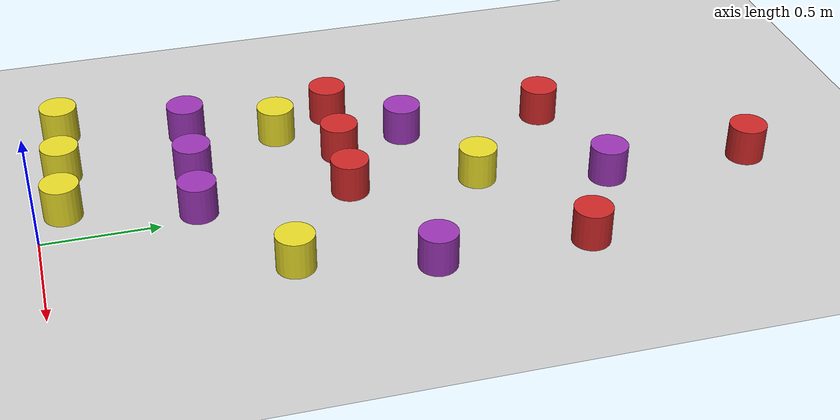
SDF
<sdf version="1.7">
 <world name="default">
  <model name="ground_plane">
   <static>1</static>
   <link name="link">
    <collision name="collision">
     <geometry><plane><normal>0 0 1</normal><size>100 100</size></plane></geometry>
     <surface>
      <contact><collide_bitmask>65535</collide_bitmask></contact>
      <friction><ode><mu>100</mu><mu2>50</mu2></ode></friction>
     </surface>
    </collision>
    <visual name="visual">
     <cast_shadows>0</cast_shadows>
     <geometry><plane><normal>0 0 1</normal><size>100 100</size></plane></geometry>
     <material>
      <script><uri>file://media/materials/scripts/gazebo.material</uri><name>Gazebo/Grey</name></script>
     </material>
    </visual>
   </link>
  </model>
  <model name="3obstacles">
   <static>1</static>
   <link name="obstacle_1">
    <inertial>
     <mass>1</mass>
     <inertia>
      <ixx>1.73831e-05</ixx>
      <ixy>0</ixy>
      <ixz>0</ixz>
      <iyy>1.73831e-05</iyy>
      <iyz>0</iyz>
      <izz>1.4913e-05</izz>
     </inertia>
    </inertial>
    <pose>-0.44 1 0 0 -0 0</pose>
    <visual name="visual">
     <geometry><cylinder><radius>0.0820934</radius><length>0.16406</length></cylinder></geometry>
     <material>
      <lighting>1</lighting>
      <script><uri>file://media/materials/scripts/gazebo.material</uri><name>Gazebo/Red</name></script>
      <shader type="pixel"><normal_map>__default__</normal_map></shader>
      <ambient>1 0 0 1</ambient>
      <diffuse>1 0 0 1</diffuse>
      <specular>0.1 0.1 0.1 1</specular>
      <emissive>0 0 0 1</emissive>
     </material>
    </visual>
    <collision name="collision">
     <geometry><cylinder><radius>0.082093</radius><length>0.16406</length></cylinder></geometry>
     <surface>
      <friction>
       <ode><mu>1</mu><mu2>1</mu2><fdir1>0 0 0</fdir1><slip1>0</slip1><slip2>0</slip2></ode>
       <torsional>
        <coefficient>1</coefficient>
        <patch_radius>0</patch_radius>
        <surface_radius>0</surface_radius>
        <use_patch_radius>1</use_patch_radius>
        <ode><slip>0</slip></ode>
       </torsional>
      </friction>
      <bounce><restitution_coefficient>0</restitution_coefficient><threshold>1e+06</threshold></bounce>
      <contact>
       <collide_without_contact>0</collide_without_contact>
       <collide_without_contact_bitmask>1</collide_without_contact_bitmask>
       <collide_bitmask>1</collide_bitmask>
       <ode>
        <soft_cfm>0</soft_cfm>
        <soft_erp>0.2</soft_erp>
        <kp>1e+13</kp>
        <kd>1</kd>
        <max_vel>0.01</max_vel>
        <min_depth>0</min_depth>
       </ode>
       <bullet>
        <split_impulse>1</split_impulse>
        <split_impulse_penetration_threshold>-0.01</split_impulse_penetration_threshold>
        <soft_cfm>0</soft_cfm>
        <soft_erp>0.2</soft_erp>
        <kp>1e+13</kp>
        <kd>1</kd>
       </bullet>
      </contact>
     </surface>
    </collision>
   </link>
   <link name="obstacle_2">
    <inertial>
     <mass>0.00442567</mass>
     <inertia>
      <ixx>1.73831e-05</ixx>
      <ixy>0</ixy>
      <ixz>0</ixz>
      <iyy>1.73831e-05</iyy>
      <iyz>0</iyz>
      <izz>1.4913e-05</izz>
     </inertia>
    </inertial>
    <pose>-0.4398 0.35 0 0 -0 0</pose>
    <visual name="visual">
     <geometry><cylinder><radius>0.0820934</radius><length>0.16406</length></cylinder></geometry>
     <material>
      <lighting>1</lighting>
      <script><uri>file://media/materials/scripts/gazebo.material</uri><name>Gazebo/Purple</name></script>
      <shader type="pixel"><normal_map>__default__</normal_map></shader>
      <ambient>1 0 0 1</ambient>
      <diffuse>1 0 0 1</diffuse>
      <specular>0.1 0.1 0.1 1</specular>
      <emissive>0 0 0 1</emissive>
     </material>
    </visual>
    <collision name="collision">
     <geometry><cylinder><radius>0.082093</radius><length>0.16406</length></cylinder></geometry>
     <surface>
      <friction>
       <ode><mu>1</mu><mu2>1</mu2><fdir1>0 0 0</fdir1><slip1>0</slip1><slip2>0</slip2></ode>
       <torsional>
        <coefficient>1</coefficient>
        <patch_radius>0</patch_radius>
        <surface_radius>0</surface_radius>
        <use_patch_radius>1</use_patch_radius>
        <ode><slip>0</slip></ode>
       </torsional>
      </friction>
      <bounce><restitution_coefficient>0</restitution_coefficient><threshold>1e+06</threshold></bounce>
      <contact>
       <collide_without_contact>0</collide_without_contact>
       <collide_without_contact_bitmask>1</collide_without_contact_bitmask>
       <collide_bitmask>1</collide_bitmask>
       <ode>
        <soft_cfm>0</soft_cfm>
        <soft_erp>0.2</soft_erp>
        <kp>1e+13</kp>
        <kd>1</kd>
        <max_vel>0.01</max_vel>
        <min_depth>0</min_depth>
       </ode>
       <bullet>
        <split_impulse>1</split_impulse>
        <split_impulse_penetration_threshold>-0.01</split_impulse_penetration_threshold>
        <soft_cfm>0</soft_cfm>
        <soft_erp>0.2</soft_erp>
        <kp>1e+13</kp>
        <kd>1</kd>
       </bullet>
      </contact>
     </surface>
    </collision>
   </link>
   <link name="obstacle_3">
    <inertial>
     <mass>0.00442567</mass>
     <inertia>
      <ixx>1.73831e-05</ixx>
      <ixy>0</ixy>
      <ixz>0</ixz>
      <iyy>1.73831e-05</iyy>
      <iyz>0</iyz>
      <izz>1.4913e-05</izz>
     </inertia>
    </inertial>
    <pose>-0.57 -0.2 0 0 -0 0</pose>
    <visual name="visual">
     <geometry><cylinder><radius>0.0820934</radius><length>0.16406</length></cylinder></geometry>
     <material>
      <lighting>1</lighting>
      <script><uri>file://media/materials/scripts/gazebo.material</uri><name>Gazebo/Yellow</name></script>
      <shader type="pixel"><normal_map>__default__</normal_map></shader>
      <ambient>1 0 0 1</ambient>
      <diffuse>1 0 0 1</diffuse>
      <specular>0.1 0.1 0.1 1</specular>
      <emissive>0 0 0 1</emissive>
     </material>
    </visual>
    <collision name="collision">
     <geometry><cylinder><radius>0.082093</radius><length>0.16406</length></cylinder></geometry>
     <surface>
      <friction>
       <ode><mu>1</mu><mu2>1</mu2><fdir1>0 0 0</fdir1><slip1>0</slip1><slip2>0</slip2></ode>
       <torsional>
        <coefficient>1</coefficient>
        <patch_radius>0</patch_radius>
        <surface_radius>0</surface_radius>
        <use_patch_radius>1</use_patch_radius>
        <ode><slip>0</slip></ode>
       </torsional>
      </friction>
      <bounce><restitution_coefficient>0</restitution_coefficient><threshold>1e+06</threshold></bounce>
      <contact>
       <collide_without_contact>0</collide_without_contact>
       <collide_without_contact_bitmask>1</collide_without_contact_bitmask>
       <collide_bitmask>1</collide_bitmask>
       <ode>
        <soft_cfm>0</soft_cfm>
        <soft_erp>0.2</soft_erp>
        <kp>1e+13</kp>
        <kd>1</kd>
        <max_vel>0.01</max_vel>
        <min_depth>0</min_depth>
       </ode>
       <bullet>
        <split_impulse>1</split_impulse>
        <split_impulse_penetration_threshold>-0.01</split_impulse_penetration_threshold>
        <soft_cfm>0</soft_cfm>
        <soft_erp>0.2</soft_erp>
        <kp>1e+13</kp>
        <kd>1</kd>
       </bullet>
      </contact>
     </surface>
    </collision>
   </link>
   <static>1</static>
   <pose>0.379904 0.313177 0.077132 0 -0 0</pose>
  </model>
  <model name="3obstacles_clone">
   <static>1</static>
   <link name="obstacle_1">
    <inertial>
     <mass>1</mass>
     <inertia>
      <ixx>1.73831e-05</ixx>
      <ixy>0</ixy>
      <ixz>0</ixz>
      <iyy>1.73831e-05</iyy>
      <iyz>0</iyz>
      <izz>1.4913e-05</izz>
     </inertia>
    </inertial>
    <pose>-0.44 1 0 0 -0 0</pose>
    <visual name="visual">
     <geometry><cylinder><radius>0.0820934</radius><length>0.16406</length></cylinder></geometry>
     <material>
      <lighting>1</lighting>
      <script><uri>file://media/materials/scripts/gazebo.material</uri><name>Gazebo/Red</name></script>
      <shader type="pixel"><normal_map>__default__</normal_map></shader>
      <ambient>1 0 0 1</ambient>
      <diffuse>1 0 0 1</diffuse>
      <specular>0.1 0.1 0.1 1</specular>
      <emissive>0 0 0 1</emissive>
     </material>
    </visual>
    <collision name="collision">
     <geometry><cylinder><radius>0.082093</radius><length>0.16406</length></cylinder></geometry>
     <surface>
      <friction>
       <ode><mu>1</mu><mu2>1</mu2><fdir1>0 0 0</fdir1><slip1>0</slip1><slip2>0</slip2></ode>
       <torsional>
        <coefficient>1</coefficient>
        <patch_radius>0</patch_radius>
        <surface_radius>0</surface_radius>
        <use_patch_radius>1</use_patch_radius>
        <ode><slip>0</slip></ode>
       </torsional>
      </friction>
      <bounce><restitution_coefficient>0</restitution_coefficient><threshold>1e+06</threshold></bounce>
      <contact>
       <collide_without_contact>0</collide_without_contact>
       <collide_without_contact_bitmask>1</collide_without_contact_bitmask>
       <collide_bitmask>1</collide_bitmask>
       <ode>
        <soft_cfm>0</soft_cfm>
        <soft_erp>0.2</soft_erp>
        <kp>1e+13</kp>
        <kd>1</kd>
        <max_vel>0.01</max_vel>
        <min_depth>0</min_depth>
       </ode>
       <bullet>
        <split_impulse>1</split_impulse>
        <split_impulse_penetration_threshold>-0.01</split_impulse_penetration_threshold>
        <soft_cfm>0</soft_cfm>
        <soft_erp>0.2</soft_erp>
        <kp>1e+13</kp>
        <kd>1</kd>
       </bullet>
      </contact>
     </surface>
    </collision>
   </link>
   <link name="obstacle_2">
    <inertial>
     <mass>0.00442567</mass>
     <inertia>
      <ixx>1.73831e-05</ixx>
      <ixy>0</ixy>
      <ixz>0</ixz>
      <iyy>1.73831e-05</iyy>
      <iyz>0</iyz>
      <izz>1.4913e-05</izz>
     </inertia>
    </inertial>
    <pose>-0.4398 0.35 0 0 -0 0</pose>
    <visual name="visual">
     <geometry><cylinder><radius>0.0820934</radius><length>0.16406</length></cylinder></geometry>
     <material>
      <lighting>1</lighting>
      <script><uri>file://media/materials/scripts/gazebo.material</uri><name>Gazebo/Purple</name></script>
      <shader type="pixel"><normal_map>__default__</normal_map></shader>
      <ambient>1 0 0 1</ambient>
      <diffuse>1 0 0 1</diffuse>
      <specular>0.1 0.1 0.1 1</specular>
      <emissive>0 0 0 1</emissive>
     </material>
    </visual>
    <collision name="collision">
     <geometry><cylinder><radius>0.082093</radius><length>0.16406</length></cylinder></geometry>
     <surface>
      <friction>
       <ode><mu>1</mu><mu2>1</mu2><fdir1>0 0 0</fdir1><slip1>0</slip1><slip2>0</slip2></ode>
       <torsional>
        <coefficient>1</coefficient>
        <patch_radius>0</patch_radius>
        <surface_radius>0</surface_radius>
        <use_patch_radius>1</use_patch_radius>
        <ode><slip>0</slip></ode>
       </torsional>
      </friction>
      <bounce><restitution_coefficient>0</restitution_coefficient><threshold>1e+06</threshold></bounce>
      <contact>
       <collide_without_contact>0</collide_without_contact>
       <collide_without_contact_bitmask>1</collide_without_contact_bitmask>
       <collide_bitmask>1</collide_bitmask>
       <ode>
        <soft_cfm>0</soft_cfm>
        <soft_erp>0.2</soft_erp>
        <kp>1e+13</kp>
        <kd>1</kd>
        <max_vel>0.01</max_vel>
        <min_depth>0</min_depth>
       </ode>
       <bullet>
        <split_impulse>1</split_impulse>
        <split_impulse_penetration_threshold>-0.01</split_impulse_penetration_threshold>
        <soft_cfm>0</soft_cfm>
        <soft_erp>0.2</soft_erp>
        <kp>1e+13</kp>
        <kd>1</kd>
       </bullet>
      </contact>
     </surface>
    </collision>
   </link>
   <link name="obstacle_3">
    <inertial>
     <mass>0.00442567</mass>
     <inertia>
      <ixx>1.73831e-05</ixx>
      <ixy>0</ixy>
      <ixz>0</ixz>
      <iyy>1.73831e-05</iyy>
      <iyz>0</iyz>
      <izz>1.4913e-05</izz>
     </inertia>
    </inertial>
    <pose>-0.57 -0.2 0 0 -0 0</pose>
    <visual name="visual">
     <geometry><cylinder><radius>0.0820934</radius><length>0.16406</length></cylinder></geometry>
     <material>
      <lighting>1</lighting>
      <script><uri>file://media/materials/scripts/gazebo.material</uri><name>Gazebo/Yellow</name></script>
      <shader type="pixel"><normal_map>__default__</normal_map></shader>
      <ambient>1 0 0 1</ambient>
      <diffuse>1 0 0 1</diffuse>
      <specular>0.1 0.1 0.1 1</specular>
      <emissive>0 0 0 1</emissive>
     </material>
    </visual>
    <collision name="collision">
     <geometry><cylinder><radius>0.082093</radius><length>0.16406</length></cylinder></geometry>
     <surface>
      <friction>
       <ode><mu>1</mu><mu2>1</mu2><fdir1>0 0 0</fdir1><slip1>0</slip1><slip2>0</slip2></ode>
       <torsional>
        <coefficient>1</coefficient>
        <patch_radius>0</patch_radius>
        <surface_radius>0</surface_radius>
        <use_patch_radius>1</use_patch_radius>
        <ode><slip>0</slip></ode>
       </torsional>
      </friction>
      <bounce><restitution_coefficient>0</restitution_coefficient><threshold>1e+06</threshold></bounce>
      <contact>
       <collide_without_contact>0</collide_without_contact>
       <collide_without_contact_bitmask>1</collide_without_contact_bitmask>
       <collide_bitmask>1</collide_bitmask>
       <ode>
        <soft_cfm>0</soft_cfm>
        <soft_erp>0.2</soft_erp>
        <kp>1e+13</kp>
        <kd>1</kd>
        <max_vel>0.01</max_vel>
        <min_depth>0</min_depth>
       </ode>
       <bullet>
        <split_impulse>1</split_impulse>
        <split_impulse_penetration_threshold>-0.01</split_impulse_penetration_threshold>
        <soft_cfm>0</soft_cfm>
        <soft_erp>0.2</soft_erp>
        <kp>1e+13</kp>
        <kd>1</kd>
       </bullet>
      </contact>
     </surface>
    </collision>
   </link>
   <static>1</static>
   <pose>0.087386 0.333914 0.077132 0 -0 0</pose>
  </model>
  <model name="3obstacles_clone_0">
   <static>1</static>
   <link name="obstacle_1">
    <inertial>
     <mass>1</mass>
     <inertia>
      <ixx>1.73831e-05</ixx>
      <ixy>0</ixy>
      <ixz>0</ixz>
      <iyy>1.73831e-05</iyy>
      <iyz>0</iyz>
      <izz>1.4913e-05</izz>
     </inertia>
    </inertial>
    <pose>-0.44 1 0 0 -0 0</pose>
    <visual name="visual">
     <geometry><cylinder><radius>0.0820934</radius><length>0.16406</length></cylinder></geometry>
     <material>
      <lighting>1</lighting>
      <script><uri>file://media/materials/scripts/gazebo.material</uri><name>Gazebo/Red</name></script>
      <shader type="pixel"><normal_map>__default__</normal_map></shader>
      <ambient>1 0 0 1</ambient>
      <diffuse>1 0 0 1</diffuse>
      <specular>0.1 0.1 0.1 1</specular>
      <emissive>0 0 0 1</emissive>
     </material>
    </visual>
    <collision name="collision">
     <geometry><cylinder><radius>0.082093</radius><length>0.16406</length></cylinder></geometry>
     <surface>
      <friction>
       <ode><mu>1</mu><mu2>1</mu2><fdir1>0 0 0</fdir1><slip1>0</slip1><slip2>0</slip2></ode>
       <torsional>
        <coefficient>1</coefficient>
        <patch_radius>0</patch_radius>
        <surface_radius>0</surface_radius>
        <use_patch_radius>1</use_patch_radius>
        <ode><slip>0</slip></ode>
       </torsional>
      </friction>
      <bounce><restitution_coefficient>0</restitution_coefficient><threshold>1e+06</threshold></bounce>
      <contact>
       <collide_without_contact>0</collide_without_contact>
       <collide_without_contact_bitmask>1</collide_without_contact_bitmask>
       <collide_bitmask>1</collide_bitmask>
       <ode>
        <soft_cfm>0</soft_cfm>
        <soft_erp>0.2</soft_erp>
        <kp>1e+13</kp>
        <kd>1</kd>
        <max_vel>0.01</max_vel>
        <min_depth>0</min_depth>
       </ode>
       <bullet>
        <split_impulse>1</split_impulse>
        <split_impulse_penetration_threshold>-0.01</split_impulse_penetration_threshold>
        <soft_cfm>0</soft_cfm>
        <soft_erp>0.2</soft_erp>
        <kp>1e+13</kp>
        <kd>1</kd>
       </bullet>
      </contact>
     </surface>
    </collision>
   </link>
   <link name="obstacle_2">
    <inertial>
     <mass>0.00442567</mass>
     <inertia>
      <ixx>1.73831e-05</ixx>
      <ixy>0</ixy>
      <ixz>0</ixz>
      <iyy>1.73831e-05</iyy>
      <iyz>0</iyz>
      <izz>1.4913e-05</izz>
     </inertia>
    </inertial>
    <pose>-0.4398 0.35 0 0 -0 0</pose>
    <visual name="visual">
     <geometry><cylinder><radius>0.0820934</radius><length>0.16406</length></cylinder></geometry>
     <material>
      <lighting>1</lighting>
      <script><uri>file://media/materials/scripts/gazebo.material</uri><name>Gazebo/Purple</name></script>
      <shader type="pixel"><normal_map>__default__</normal_map></shader>
      <ambient>1 0 0 1</ambient>
      <diffuse>1 0 0 1</diffuse>
      <specular>0.1 0.1 0.1 1</specular>
      <emissive>0 0 0 1</emissive>
     </material>
    </visual>
    <collision name="collision">
     <geometry><cylinder><radius>0.082093</radius><length>0.16406</length></cylinder></geometry>
     <surface>
      <friction>
       <ode><mu>1</mu><mu2>1</mu2><fdir1>0 0 0</fdir1><slip1>0</slip1><slip2>0</slip2></ode>
       <torsional>
        <coefficient>1</coefficient>
        <patch_radius>0</patch_radius>
        <surface_radius>0</surface_radius>
        <use_patch_radius>1</use_patch_radius>
        <ode><slip>0</slip></ode>
       </torsional>
      </friction>
      <bounce><restitution_coefficient>0</restitution_coefficient><threshold>1e+06</threshold></bounce>
      <contact>
       <collide_without_contact>0</collide_without_contact>
       <collide_without_contact_bitmask>1</collide_without_contact_bitmask>
       <collide_bitmask>1</collide_bitmask>
       <ode>
        <soft_cfm>0</soft_cfm>
        <soft_erp>0.2</soft_erp>
        <kp>1e+13</kp>
        <kd>1</kd>
        <max_vel>0.01</max_vel>
        <min_depth>0</min_depth>
       </ode>
       <bullet>
        <split_impulse>1</split_impulse>
        <split_impulse_penetration_threshold>-0.01</split_impulse_penetration_threshold>
        <soft_cfm>0</soft_cfm>
        <soft_erp>0.2</soft_erp>
        <kp>1e+13</kp>
        <kd>1</kd>
       </bullet>
      </contact>
     </surface>
    </collision>
   </link>
   <link name="obstacle_3">
    <inertial>
     <mass>0.00442567</mass>
     <inertia>
      <ixx>1.73831e-05</ixx>
      <ixy>0</ixy>
      <ixz>0</ixz>
      <iyy>1.73831e-05</iyy>
      <iyz>0</iyz>
      <izz>1.4913e-05</izz>
     </inertia>
    </inertial>
    <pose>-0.57 -0.2 0 0 -0 0</pose>
    <visual name="visual">
     <geometry><cylinder><radius>0.0820934</radius><length>0.16406</length></cylinder></geometry>
     <material>
      <lighting>1</lighting>
      <script><uri>file://media/materials/scripts/gazebo.material</uri><name>Gazebo/Yellow</name></script>
      <shader type="pixel"><normal_map>__default__</normal_map></shader>
      <ambient>1 0 0 1</ambient>
      <diffuse>1 0 0 1</diffuse>
      <specular>0.1 0.1 0.1 1</specular>
      <emissive>0 0 0 1</emissive>
     </material>
    </visual>
    <collision name="collision">
     <geometry><cylinder><radius>0.082093</radius><length>0.16406</length></cylinder></geometry>
     <surface>
      <friction>
       <ode><mu>1</mu><mu2>1</mu2><fdir1>0 0 0</fdir1><slip1>0</slip1><slip2>0</slip2></ode>
       <torsional>
        <coefficient>1</coefficient>
        <patch_radius>0</patch_radius>
        <surface_radius>0</surface_radius>
        <use_patch_radius>1</use_patch_radius>
        <ode><slip>0</slip></ode>
       </torsional>
      </friction>
      <bounce><restitution_coefficient>0</restitution_coefficient><threshold>1e+06</threshold></bounce>
      <contact>
       <collide_without_contact>0</collide_without_contact>
       <collide_without_contact_bitmask>1</collide_without_contact_bitmask>
       <collide_bitmask>1</collide_bitmask>
       <ode>
        <soft_cfm>0</soft_cfm>
        <soft_erp>0.2</soft_erp>
        <kp>1e+13</kp>
        <kd>1</kd>
        <max_vel>0.01</max_vel>
        <min_depth>0</min_depth>
       </ode>
       <bullet>
        <split_impulse>1</split_impulse>
        <split_impulse_penetration_threshold>-0.01</split_impulse_penetration_threshold>
        <soft_cfm>0</soft_cfm>
        <soft_erp>0.2</soft_erp>
        <kp>1e+13</kp>
        <kd>1</kd>
       </bullet>
      </contact>
     </surface>
    </collision>
   </link>
   <static>1</static>
   <pose>-0.24166 0.352496 0.077132 0 -0 0</pose>
  </model>
  <model name="3obstacles_clone_3">
   <static>1</static>
   <link name="obstacle_1">
    <inertial>
     <mass>1</mass>
     <inertia>
      <ixx>1.73831e-05</ixx>
      <ixy>0</ixy>
      <ixz>0</ixz>
      <iyy>1.73831e-05</iyy>
      <iyz>0</iyz>
      <izz>1.4913e-05</izz>
     </inertia>
    </inertial>
    <pose>-0.44 1 0 0 -0 0</pose>
    <visual name="visual">
     <geometry><cylinder><radius>0.0820934</radius><length>0.16406</length></cylinder></geometry>
     <material>
      <lighting>1</lighting>
      <script><uri>file://media/materials/scripts/gazebo.material</uri><name>Gazebo/Red</name></script>
      <shader type="pixel"><normal_map>__default__</normal_map></shader>
      <ambient>1 0 0 1</ambient>
      <diffuse>1 0 0 1</diffuse>
      <specular>0.1 0.1 0.1 1</specular>
      <emissive>0 0 0 1</emissive>
     </material>
    </visual>
    <collision name="collision">
     <geometry><cylinder><radius>0.082093</radius><length>0.16406</length></cylinder></geometry>
     <surface>
      <friction>
       <ode><mu>1</mu><mu2>1</mu2><fdir1>0 0 0</fdir1><slip1>0</slip1><slip2>0</slip2></ode>
       <torsional>
        <coefficient>1</coefficient>
        <patch_radius>0</patch_radius>
        <surface_radius>0</surface_radius>
        <use_patch_radius>1</use_patch_radius>
        <ode><slip>0</slip></ode>
       </torsional>
      </friction>
      <bounce><restitution_coefficient>0</restitution_coefficient><threshold>1e+06</threshold></bounce>
      <contact>
       <collide_without_contact>0</collide_without_contact>
       <collide_without_contact_bitmask>1</collide_without_contact_bitmask>
       <collide_bitmask>1</collide_bitmask>
       <ode>
        <soft_cfm>0</soft_cfm>
        <soft_erp>0.2</soft_erp>
        <kp>1e+13</kp>
        <kd>1</kd>
        <max_vel>0.01</max_vel>
        <min_depth>0</min_depth>
       </ode>
       <bullet>
        <split_impulse>1</split_impulse>
        <split_impulse_penetration_threshold>-0.01</split_impulse_penetration_threshold>
        <soft_cfm>0</soft_cfm>
        <soft_erp>0.2</soft_erp>
        <kp>1e+13</kp>
        <kd>1</kd>
       </bullet>
      </contact>
     </surface>
    </collision>
   </link>
   <link name="obstacle_2">
    <inertial>
     <mass>0.00442567</mass>
     <inertia>
      <ixx>1.73831e-05</ixx>
      <ixy>0</ixy>
      <ixz>0</ixz>
      <iyy>1.73831e-05</iyy>
      <iyz>0</iyz>
      <izz>1.4913e-05</izz>
     </inertia>
    </inertial>
    <pose>-0.4398 0.35 0 0 -0 0</pose>
    <visual name="visual">
     <geometry><cylinder><radius>0.0820934</radius><length>0.16406</length></cylinder></geometry>
     <material>
      <lighting>1</lighting>
      <script><uri>file://media/materials/scripts/gazebo.material</uri><name>Gazebo/Purple</name></script>
      <shader type="pixel"><normal_map>__default__</normal_map></shader>
      <ambient>1 0 0 1</ambient>
      <diffuse>1 0 0 1</diffuse>
      <specular>0.1 0.1 0.1 1</specular>
      <emissive>0 0 0 1</emissive>
     </material>
    </visual>
    <collision name="collision">
     <geometry><cylinder><radius>0.082093</radius><length>0.16406</length></cylinder></geometry>
     <surface>
      <friction>
       <ode><mu>1</mu><mu2>1</mu2><fdir1>0 0 0</fdir1><slip1>0</slip1><slip2>0</slip2></ode>
       <torsional>
        <coefficient>1</coefficient>
        <patch_radius>0</patch_radius>
        <surface_radius>0</surface_radius>
        <use_patch_radius>1</use_patch_radius>
        <ode><slip>0</slip></ode>
       </torsional>
      </friction>
      <bounce><restitution_coefficient>0</restitution_coefficient><threshold>1e+06</threshold></bounce>
      <contact>
       <collide_without_contact>0</collide_without_contact>
       <collide_without_contact_bitmask>1</collide_without_contact_bitmask>
       <collide_bitmask>1</collide_bitmask>
       <ode>
        <soft_cfm>0</soft_cfm>
        <soft_erp>0.2</soft_erp>
        <kp>1e+13</kp>
        <kd>1</kd>
        <max_vel>0.01</max_vel>
        <min_depth>0</min_depth>
       </ode>
       <bullet>
        <split_impulse>1</split_impulse>
        <split_impulse_penetration_threshold>-0.01</split_impulse_penetration_threshold>
        <soft_cfm>0</soft_cfm>
        <soft_erp>0.2</soft_erp>
        <kp>1e+13</kp>
        <kd>1</kd>
       </bullet>
      </contact>
     </surface>
    </collision>
   </link>
   <link name="obstacle_3">
    <inertial>
     <mass>0.00442567</mass>
     <inertia>
      <ixx>1.73831e-05</ixx>
      <ixy>0</ixy>
      <ixz>0</ixz>
      <iyy>1.73831e-05</iyy>
      <iyz>0</iyz>
      <izz>1.4913e-05</izz>
     </inertia>
    </inertial>
    <pose>-0.57 -0.2 0 0 -0 0</pose>
    <visual name="visual">
     <geometry><cylinder><radius>0.0820934</radius><length>0.16406</length></cylinder></geometry>
     <material>
      <lighting>1</lighting>
      <script><uri>file://media/materials/scripts/gazebo.material</uri><name>Gazebo/Yellow</name></script>
      <shader type="pixel"><normal_map>__default__</normal_map></shader>
      <ambient>1 0 0 1</ambient>
      <diffuse>1 0 0 1</diffuse>
      <specular>0.1 0.1 0.1 1</specular>
      <emissive>0 0 0 1</emissive>
     </material>
    </visual>
    <collision name="collision">
     <geometry><cylinder><radius>0.082093</radius><length>0.16406</length></cylinder></geometry>
     <surface>
      <friction>
       <ode><mu>1</mu><mu2>1</mu2><fdir1>0 0 0</fdir1><slip1>0</slip1><slip2>0</slip2></ode>
       <torsional>
        <coefficient>1</coefficient>
        <patch_radius>0</patch_radius>
        <surface_radius>0</surface_radius>
        <use_patch_radius>1</use_patch_radius>
        <ode><slip>0</slip></ode>
       </torsional>
      </friction>
      <bounce><restitution_coefficient>0</restitution_coefficient><threshold>1e+06</threshold></bounce>
      <contact>
       <collide_without_contact>0</collide_without_contact>
       <collide_without_contact_bitmask>1</collide_without_contact_bitmask>
       <collide_bitmask>1</collide_bitmask>
       <ode>
        <soft_cfm>0</soft_cfm>
        <soft_erp>0.2</soft_erp>
        <kp>1e+13</kp>
        <kd>1</kd>
        <max_vel>0.01</max_vel>
        <min_depth>0</min_depth>
       </ode>
       <bullet>
        <split_impulse>1</split_impulse>
        <split_impulse_penetration_threshold>-0.01</split_impulse_penetration_threshold>
        <soft_cfm>0</soft_cfm>
        <soft_erp>0.2</soft_erp>
        <kp>1e+13</kp>
        <kd>1</kd>
       </bullet>
      </contact>
     </surface>
    </collision>
   </link>
   <static>1</static>
   <pose>0.004479 1.29119 0.077132 0 -0 0</pose>
  </model>
  <model name="3obstacles_clone_4">
   <static>1</static>
   <link name="obstacle_1">
    <inertial>
     <mass>1</mass>
     <inertia>
      <ixx>1.73831e-05</ixx>
      <ixy>0</ixy>
      <ixz>0</ixz>
      <iyy>1.73831e-05</iyy>
      <iyz>0</iyz>
      <izz>1.4913e-05</izz>
     </inertia>
    </inertial>
    <pose>-0.44 1 0 0 -0 0</pose>
    <visual name="visual">
     <geometry><cylinder><radius>0.0820934</radius><length>0.16406</length></cylinder></geometry>
     <material>
      <lighting>1</lighting>
      <script><uri>file://media/materials/scripts/gazebo.material</uri><name>Gazebo/Red</name></script>
      <shader type="pixel"><normal_map>__default__</normal_map></shader>
      <ambient>1 0 0 1</ambient>
      <diffuse>1 0 0 1</diffuse>
      <specular>0.1 0.1 0.1 1</specular>
      <emissive>0 0 0 1</emissive>
     </material>
    </visual>
    <collision name="collision">
     <geometry><cylinder><radius>0.082093</radius><length>0.16406</length></cylinder></geometry>
     <surface>
      <friction>
       <ode><mu>1</mu><mu2>1</mu2><fdir1>0 0 0</fdir1><slip1>0</slip1><slip2>0</slip2></ode>
       <torsional>
        <coefficient>1</coefficient>
        <patch_radius>0</patch_radius>
        <surface_radius>0</surface_radius>
        <use_patch_radius>1</use_patch_radius>
        <ode><slip>0</slip></ode>
       </torsional>
      </friction>
      <bounce><restitution_coefficient>0</restitution_coefficient><threshold>1e+06</threshold></bounce>
      <contact>
       <collide_without_contact>0</collide_without_contact>
       <collide_without_contact_bitmask>1</collide_without_contact_bitmask>
       <collide_bitmask>1</collide_bitmask>
       <ode>
        <soft_cfm>0</soft_cfm>
        <soft_erp>0.2</soft_erp>
        <kp>1e+13</kp>
        <kd>1</kd>
        <max_vel>0.01</max_vel>
        <min_depth>0</min_depth>
       </ode>
       <bullet>
        <split_impulse>1</split_impulse>
        <split_impulse_penetration_threshold>-0.01</split_impulse_penetration_threshold>
        <soft_cfm>0</soft_cfm>
        <soft_erp>0.2</soft_erp>
        <kp>1e+13</kp>
        <kd>1</kd>
       </bullet>
      </contact>
     </surface>
    </collision>
   </link>
   <link name="obstacle_2">
    <inertial>
     <mass>0.00442567</mass>
     <inertia>
      <ixx>1.73831e-05</ixx>
      <ixy>0</ixy>
      <ixz>0</ixz>
      <iyy>1.73831e-05</iyy>
      <iyz>0</iyz>
      <izz>1.4913e-05</izz>
     </inertia>
    </inertial>
    <pose>-0.4398 0.35 0 0 -0 0</pose>
    <visual name="visual">
     <geometry><cylinder><radius>0.0820934</radius><length>0.16406</length></cylinder></geometry>
     <material>
      <lighting>1</lighting>
      <script><uri>file://media/materials/scripts/gazebo.material</uri><name>Gazebo/Purple</name></script>
      <shader type="pixel"><normal_map>__default__</normal_map></shader>
      <ambient>1 0 0 1</ambient>
      <diffuse>1 0 0 1</diffuse>
      <specular>0.1 0.1 0.1 1</specular>
      <emissive>0 0 0 1</emissive>
     </material>
    </visual>
    <collision name="collision">
     <geometry><cylinder><radius>0.082093</radius><length>0.16406</length></cylinder></geometry>
     <surface>
      <friction>
       <ode><mu>1</mu><mu2>1</mu2><fdir1>0 0 0</fdir1><slip1>0</slip1><slip2>0</slip2></ode>
       <torsional>
        <coefficient>1</coefficient>
        <patch_radius>0</patch_radius>
        <surface_radius>0</surface_radius>
        <use_patch_radius>1</use_patch_radius>
        <ode><slip>0</slip></ode>
       </torsional>
      </friction>
      <bounce><restitution_coefficient>0</restitution_coefficient><threshold>1e+06</threshold></bounce>
      <contact>
       <collide_without_contact>0</collide_without_contact>
       <collide_without_contact_bitmask>1</collide_without_contact_bitmask>
       <collide_bitmask>1</collide_bitmask>
       <ode>
        <soft_cfm>0</soft_cfm>
        <soft_erp>0.2</soft_erp>
        <kp>1e+13</kp>
        <kd>1</kd>
        <max_vel>0.01</max_vel>
        <min_depth>0</min_depth>
       </ode>
       <bullet>
        <split_impulse>1</split_impulse>
        <split_impulse_penetration_threshold>-0.01</split_impulse_penetration_threshold>
        <soft_cfm>0</soft_cfm>
        <soft_erp>0.2</soft_erp>
        <kp>1e+13</kp>
        <kd>1</kd>
       </bullet>
      </contact>
     </surface>
    </collision>
   </link>
   <link name="obstacle_3">
    <inertial>
     <mass>0.00442567</mass>
     <inertia>
      <ixx>1.73831e-05</ixx>
      <ixy>0</ixy>
      <ixz>0</ixz>
      <iyy>1.73831e-05</iyy>
      <iyz>0</iyz>
      <izz>1.4913e-05</izz>
     </inertia>
    </inertial>
    <pose>-0.57 -0.2 0 0 -0 0</pose>
    <visual name="visual">
     <geometry><cylinder><radius>0.0820934</radius><length>0.16406</length></cylinder></geometry>
     <material>
      <lighting>1</lighting>
      <script><uri>file://media/materials/scripts/gazebo.material</uri><name>Gazebo/Yellow</name></script>
      <shader type="pixel"><normal_map>__default__</normal_map></shader>
      <ambient>1 0 0 1</ambient>
      <diffuse>1 0 0 1</diffuse>
      <specular>0.1 0.1 0.1 1</specular>
      <emissive>0 0 0 1</emissive>
     </material>
    </visual>
    <collision name="collision">
     <geometry><cylinder><radius>0.082093</radius><length>0.16406</length></cylinder></geometry>
     <surface>
      <friction>
       <ode><mu>1</mu><mu2>1</mu2><fdir1>0 0 0</fdir1><slip1>0</slip1><slip2>0</slip2></ode>
       <torsional>
        <coefficient>1</coefficient>
        <patch_radius>0</patch_radius>
        <surface_radius>0</surface_radius>
        <use_patch_radius>1</use_patch_radius>
        <ode><slip>0</slip></ode>
       </torsional>
      </friction>
      <bounce><restitution_coefficient>0</restitution_coefficient><threshold>1e+06</threshold></bounce>
      <contact>
       <collide_without_contact>0</collide_without_contact>
       <collide_without_contact_bitmask>1</collide_without_contact_bitmask>
       <collide_bitmask>1</collide_bitmask>
       <ode>
        <soft_cfm>0</soft_cfm>
        <soft_erp>0.2</soft_erp>
        <kp>1e+13</kp>
        <kd>1</kd>
        <max_vel>0.01</max_vel>
        <min_depth>0</min_depth>
       </ode>
       <bullet>
        <split_impulse>1</split_impulse>
        <split_impulse_penetration_threshold>-0.01</split_impulse_penetration_threshold>
        <soft_cfm>0</soft_cfm>
        <soft_erp>0.2</soft_erp>
        <kp>1e+13</kp>
        <kd>1</kd>
       </bullet>
      </contact>
     </surface>
    </collision>
   </link>
   <static>1</static>
   <pose>0.977181 1.18109 0.077132 0 -0 0</pose>
  </model>
  <model name="3obstacles_clone_8">
   <static>1</static>
   <link name="obstacle_1">
    <inertial>
     <mass>1</mass>
     <inertia>
      <ixx>1.73831e-05</ixx>
      <ixy>0</ixy>
      <ixz>0</ixz>
      <iyy>1.73831e-05</iyy>
      <iyz>0</iyz>
      <izz>1.4913e-05</izz>
     </inertia>
    </inertial>
    <pose>-0.44 1 0 0 -0 0</pose>
    <visual name="visual">
     <geometry><cylinder><radius>0.0820934</radius><length>0.16406</length></cylinder></geometry>
     <material>
      <lighting>1</lighting>
      <script><uri>file://media/materials/scripts/gazebo.material</uri><name>Gazebo/Red</name></script>
      <shader type="pixel"><normal_map>__default__</normal_map></shader>
      <ambient>1 0 0 1</ambient>
      <diffuse>1 0 0 1</diffuse>
      <specular>0.1 0.1 0.1 1</specular>
      <emissive>0 0 0 1</emissive>
     </material>
    </visual>
    <collision name="collision">
     <geometry><cylinder><radius>0.082093</radius><length>0.16406</length></cylinder></geometry>
     <surface>
      <friction>
       <ode><mu>1</mu><mu2>1</mu2><fdir1>0 0 0</fdir1><slip1>0</slip1><slip2>0</slip2></ode>
       <torsional>
        <coefficient>1</coefficient>
        <patch_radius>0</patch_radius>
        <surface_radius>0</surface_radius>
        <use_patch_radius>1</use_patch_radius>
        <ode><slip>0</slip></ode>
       </torsional>
      </friction>
      <bounce><restitution_coefficient>0</restitution_coefficient><threshold>1e+06</threshold></bounce>
      <contact>
       <collide_without_contact>0</collide_without_contact>
       <collide_without_contact_bitmask>1</collide_without_contact_bitmask>
       <collide_bitmask>1</collide_bitmask>
       <ode>
        <soft_cfm>0</soft_cfm>
        <soft_erp>0.2</soft_erp>
        <kp>1e+13</kp>
        <kd>1</kd>
        <max_vel>0.01</max_vel>
        <min_depth>0</min_depth>
       </ode>
       <bullet>
        <split_impulse>1</split_impulse>
        <split_impulse_penetration_threshold>-0.01</split_impulse_penetration_threshold>
        <soft_cfm>0</soft_cfm>
        <soft_erp>0.2</soft_erp>
        <kp>1e+13</kp>
        <kd>1</kd>
       </bullet>
      </contact>
     </surface>
    </collision>
   </link>
   <link name="obstacle_2">
    <inertial>
     <mass>0.00442567</mass>
     <inertia>
      <ixx>1.73831e-05</ixx>
      <ixy>0</ixy>
      <ixz>0</ixz>
      <iyy>1.73831e-05</iyy>
      <iyz>0</iyz>
      <izz>1.4913e-05</izz>
     </inertia>
    </inertial>
    <pose>-0.4398 0.35 0 0 -0 0</pose>
    <visual name="visual">
     <geometry><cylinder><radius>0.0820934</radius><length>0.16406</length></cylinder></geometry>
     <material>
      <lighting>1</lighting>
      <script><uri>file://media/materials/scripts/gazebo.material</uri><name>Gazebo/Purple</name></script>
      <shader type="pixel"><normal_map>__default__</normal_map></shader>
      <ambient>1 0 0 1</ambient>
      <diffuse>1 0 0 1</diffuse>
      <specular>0.1 0.1 0.1 1</specular>
      <emissive>0 0 0 1</emissive>
     </material>
    </visual>
    <collision name="collision">
     <geometry><cylinder><radius>0.082093</radius><length>0.16406</length></cylinder></geometry>
     <surface>
      <friction>
       <ode><mu>1</mu><mu2>1</mu2><fdir1>0 0 0</fdir1><slip1>0</slip1><slip2>0</slip2></ode>
       <torsional>
        <coefficient>1</coefficient>
        <patch_radius>0</patch_radius>
        <surface_radius>0</surface_radius>
        <use_patch_radius>1</use_patch_radius>
        <ode><slip>0</slip></ode>
       </torsional>
      </friction>
      <bounce><restitution_coefficient>0</restitution_coefficient><threshold>1e+06</threshold></bounce>
      <contact>
       <collide_without_contact>0</collide_without_contact>
       <collide_without_contact_bitmask>1</collide_without_contact_bitmask>
       <collide_bitmask>1</collide_bitmask>
       <ode>
        <soft_cfm>0</soft_cfm>
        <soft_erp>0.2</soft_erp>
        <kp>1e+13</kp>
        <kd>1</kd>
        <max_vel>0.01</max_vel>
        <min_depth>0</min_depth>
       </ode>
       <bullet>
        <split_impulse>1</split_impulse>
        <split_impulse_penetration_threshold>-0.01</split_impulse_penetration_threshold>
        <soft_cfm>0</soft_cfm>
        <soft_erp>0.2</soft_erp>
        <kp>1e+13</kp>
        <kd>1</kd>
       </bullet>
      </contact>
     </surface>
    </collision>
   </link>
   <link name="obstacle_3">
    <inertial>
     <mass>0.00442567</mass>
     <inertia>
      <ixx>1.73831e-05</ixx>
      <ixy>0</ixy>
      <ixz>0</ixz>
      <iyy>1.73831e-05</iyy>
      <iyz>0</iyz>
      <izz>1.4913e-05</izz>
     </inertia>
    </inertial>
    <pose>-0.57 -0.2 0 0 -0 0</pose>
    <visual name="visual">
     <geometry><cylinder><radius>0.0820934</radius><length>0.16406</length></cylinder></geometry>
     <material>
      <lighting>1</lighting>
      <script><uri>file://media/materials/scripts/gazebo.material</uri><name>Gazebo/Yellow</name></script>
      <shader type="pixel"><normal_map>__default__</normal_map></shader>
      <ambient>1 0 0 1</ambient>
      <diffuse>1 0 0 1</diffuse>
      <specular>0.1 0.1 0.1 1</specular>
      <emissive>0 0 0 1</emissive>
     </material>
    </visual>
    <collision name="collision">
     <geometry><cylinder><radius>0.082093</radius><length>0.16406</length></cylinder></geometry>
     <surface>
      <friction>
       <ode><mu>1</mu><mu2>1</mu2><fdir1>0 0 0</fdir1><slip1>0</slip1><slip2>0</slip2></ode>
       <torsional>
        <coefficient>1</coefficient>
        <patch_radius>0</patch_radius>
        <surface_radius>0</surface_radius>
        <use_patch_radius>1</use_patch_radius>
        <ode><slip>0</slip></ode>
       </torsional>
      </friction>
      <bounce><restitution_coefficient>0</restitution_coefficient><threshold>1e+06</threshold></bounce>
      <contact>
       <collide_without_contact>0</collide_without_contact>
       <collide_without_contact_bitmask>1</collide_without_contact_bitmask>
       <collide_bitmask>1</collide_bitmask>
       <ode>
        <soft_cfm>0</soft_cfm>
        <soft_erp>0.2</soft_erp>
        <kp>1e+13</kp>
        <kd>1</kd>
        <max_vel>0.01</max_vel>
        <min_depth>0</min_depth>
       </ode>
       <bullet>
        <split_impulse>1</split_impulse>
        <split_impulse_penetration_threshold>-0.01</split_impulse_penetration_threshold>
        <soft_cfm>0</soft_cfm>
        <soft_erp>0.2</soft_erp>
        <kp>1e+13</kp>
        <kd>1</kd>
       </bullet>
      </contact>
     </surface>
    </collision>
   </link>
   <static>1</static>
   <pose>0.558781 2.06609 0.077132 0 -0 0</pose>
  </model>
 </world>
</sdf>
